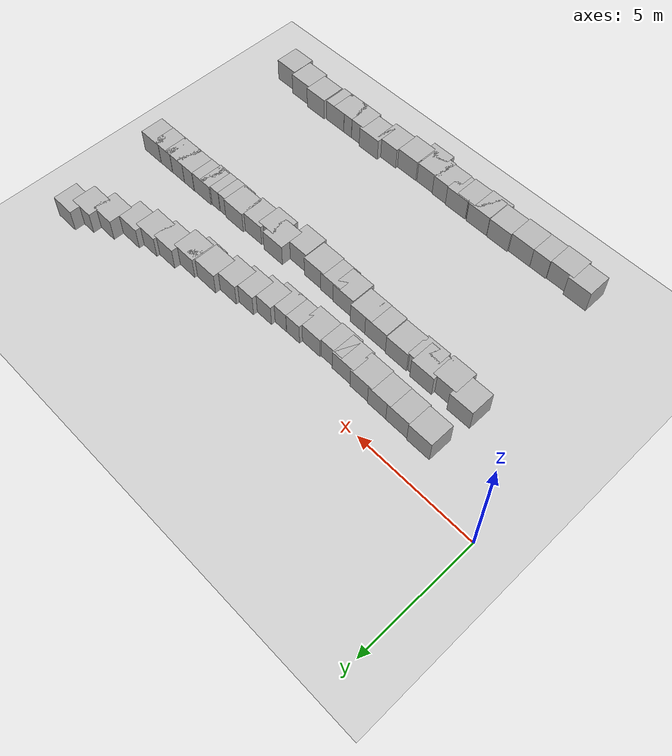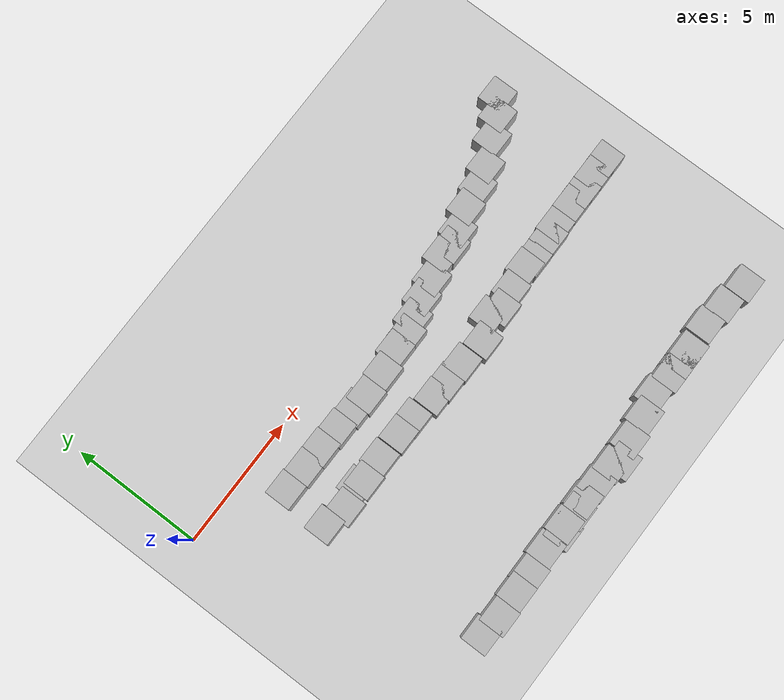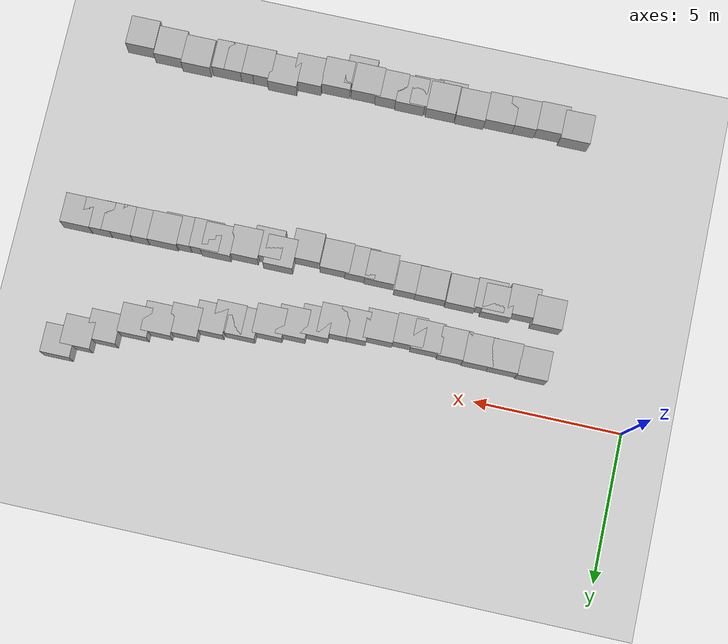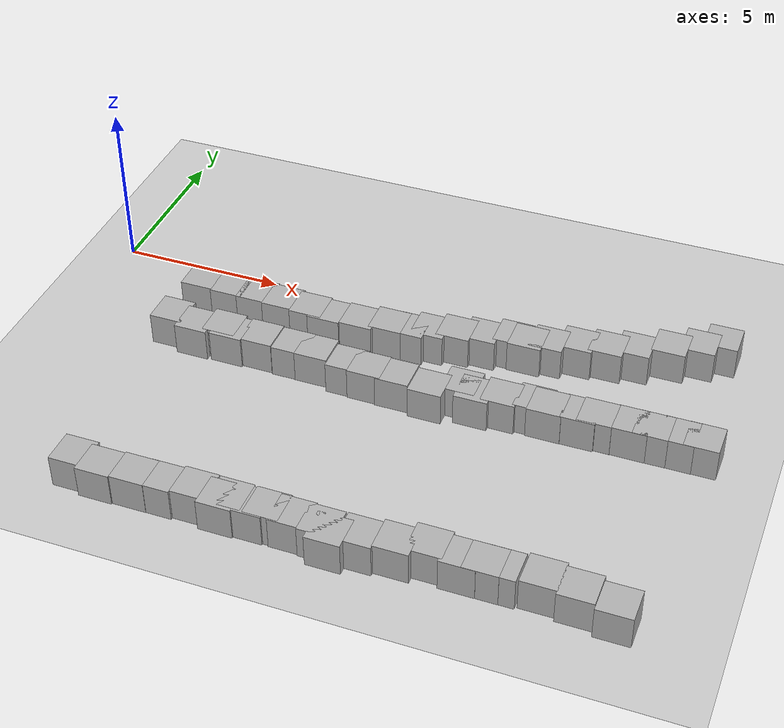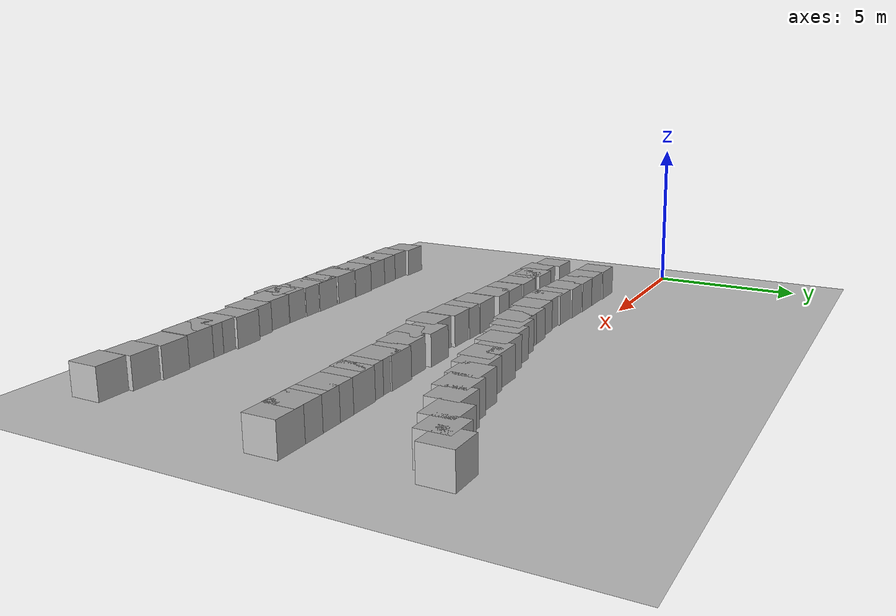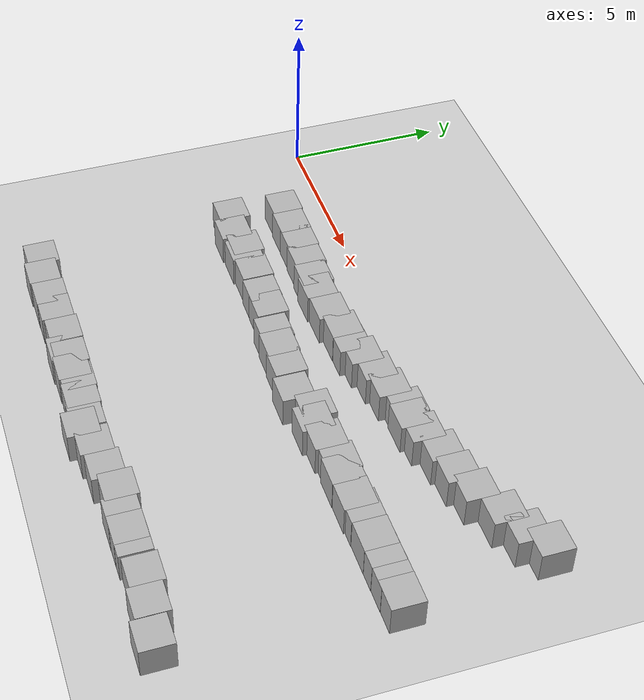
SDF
<sdf version="1.10">
 <world name="empty">
  <model name="ground_plane">
   <static>true</static>
   <link name="link">
    <collision name="collision">
     <geometry><plane><normal>0 0 1</normal><size>100 100</size></plane></geometry>
    </collision>
    <visual name="visual">
     <geometry><plane><normal>0 0 1</normal><size>100 100</size></plane></geometry>
     <material>
      <ambient>0.800000012 0.800000012 0.800000012 1</ambient>
      <diffuse>0.800000012 0.800000012 0.800000012 1</diffuse>
      <specular>0.800000012 0.800000012 0.800000012 1</specular>
     </material>
    </visual>
    <inertial>
     <mass>1</mass>
     <inertia><ixx>1</ixx><ixy>0</ixy><ixz>0</ixz><iyy>1</iyy><iyz>0</iyz><izz>1</izz></inertia>
    </inertial>
   </link>
  </model>
  <model name="box_3">
   <pose>3.32570040269158 -1.5574516324013623 0.5 0 0 0</pose>
   <link name="box_link">
    <inertial>
     <inertia><ixx>0.16666</ixx><ixy>0</ixy><ixz>0</ixz><iyy>0.16666</iyy><iyz>0</iyz><izz>0.16666</izz></inertia>
     <mass>1</mass>
    </inertial>
    <collision name="box_collision"><geometry><box><size>1 1 1</size></box></geometry></collision>
    <visual name="box_visual">
     <geometry><box><size>1 1 1</size></box></geometry>
     <material>
      <ambient>0.300000012 0.300000012 0.300000012 1</ambient>
      <diffuse>0.699999988 0.699999988 0.699999988 1</diffuse>
      <specular>1 1 1 1</specular>
     </material>
    </visual>
   </link>
   <static>false</static>
  </model>
  <model name="box_4">
   <pose>4.3095598220825195 -1.5955400466918945 0.5 0 0 0</pose>
   <link name="box_link">
    <inertial>
     <inertia><ixx>0.16666</ixx><ixy>0</ixy><ixz>0</ixz><iyy>0.16666</iyy><iyz>0</iyz><izz>0.16666</izz></inertia>
     <mass>1</mass>
    </inertial>
    <collision name="box_collision"><geometry><box><size>1 1 1</size></box></geometry></collision>
    <visual name="box_visual">
     <geometry><box><size>1 1 1</size></box></geometry>
     <material>
      <ambient>0.300000012 0.300000012 0.300000012 1</ambient>
      <diffuse>0.699999988 0.699999988 0.699999988 1</diffuse>
      <specular>1 1 1 1</specular>
     </material>
    </visual>
   </link>
   <static>false</static>
  </model>
  <model name="box_5">
   <pose>5.1638998985290527 -1.6039999723434448 0.5 0 0 0</pose>
   <link name="box_link">
    <inertial>
     <inertia><ixx>0.16666</ixx><ixy>0</ixy><ixz>0</ixz><iyy>0.16666</iyy><iyz>0</iyz><izz>0.16666</izz></inertia>
     <mass>1</mass>
    </inertial>
    <collision name="box_collision"><geometry><box><size>1 1 1</size></box></geometry></collision>
    <visual name="box_visual">
     <geometry><box><size>1 1 1</size></box></geometry>
     <material>
      <ambient>0.300000012 0.300000012 0.300000012 1</ambient>
      <diffuse>0.699999988 0.699999988 0.699999988 1</diffuse>
      <specular>1 1 1 1</specular>
     </material>
    </visual>
   </link>
   <static>false</static>
  </model>
  <model name="box_6">
   <pose>6.0194320302158717 -1.6390551681615317 0.5 0 0 0</pose>
   <link name="box_link">
    <inertial>
     <inertia><ixx>0.16666</ixx><ixy>0</ixy><ixz>0</ixz><iyy>0.16666</iyy><iyz>0</iyz><izz>0.16666</izz></inertia>
     <mass>1</mass>
    </inertial>
    <collision name="box_collision"><geometry><box><size>1 1 1</size></box></geometry></collision>
    <visual name="box_visual">
     <geometry><box><size>1 1 1</size></box></geometry>
     <material>
      <ambient>0.300000012 0.300000012 0.300000012 1</ambient>
      <diffuse>0.699999988 0.699999988 0.699999988 1</diffuse>
      <specular>1 1 1 1</specular>
     </material>
    </visual>
   </link>
   <static>false</static>
  </model>
  <model name="box_7">
   <pose>6.9316211139197259 -1.6916820472834306 0.5 0 0 0</pose>
   <link name="box_link">
    <inertial>
     <inertia><ixx>0.16666</ixx><ixy>0</ixy><ixz>0</ixz><iyy>0.16666</iyy><iyz>0</iyz><izz>0.16666</izz></inertia>
     <mass>1</mass>
    </inertial>
    <collision name="box_collision"><geometry><box><size>1 1 1</size></box></geometry></collision>
    <visual name="box_visual">
     <geometry><box><size>1 1 1</size></box></geometry>
     <material>
      <ambient>0.300000012 0.300000012 0.300000012 1</ambient>
      <diffuse>0.699999988 0.699999988 0.699999988 1</diffuse>
      <specular>1 1 1 1</specular>
     </material>
    </visual>
   </link>
   <static>false</static>
  </model>
  <model name="box_7_278">
   <pose>3.1899312912597839 -3.3241716556162739 0.5 0 0 0</pose>
   <link name="box_link">
    <inertial>
     <inertia><ixx>0.16666</ixx><ixy>0</ixy><ixz>0</ixz><iyy>0.16666</iyy><iyz>0</iyz><izz>0.16666</izz></inertia>
     <mass>1</mass>
    </inertial>
    <collision name="box_collision"><geometry><box><size>1 1 1</size></box></geometry></collision>
    <visual name="box_visual">
     <geometry><box><size>1 1 1</size></box></geometry>
     <material>
      <ambient>0.300000012 0.300000012 0.300000012 1</ambient>
      <diffuse>0.699999988 0.699999988 0.699999988 1</diffuse>
      <specular>1 1 1 1</specular>
     </material>
    </visual>
   </link>
   <static>false</static>
  </model>
  <model name="box_7_279">
   <pose>4.0768509504319077 -3.5118481541005417 0.5 0 0 0</pose>
   <link name="box_link">
    <inertial>
     <inertia><ixx>0.16666</ixx><ixy>0</ixy><ixz>0</ixz><iyy>0.16666</iyy><iyz>0</iyz><izz>0.16666</izz></inertia>
     <mass>1</mass>
    </inertial>
    <collision name="box_collision"><geometry><box><size>1 1 1</size></box></geometry></collision>
    <visual name="box_visual">
     <geometry><box><size>1 1 1</size></box></geometry>
     <material>
      <ambient>0.300000012 0.300000012 0.300000012 1</ambient>
      <diffuse>0.699999988 0.699999988 0.699999988 1</diffuse>
      <specular>1 1 1 1</specular>
     </material>
    </visual>
   </link>
   <static>false</static>
  </model>
  <model name="box_7_280">
   <pose>5.1803492763475756 -3.4763345221045157 0.5 0 0 0</pose>
   <link name="box_link">
    <inertial>
     <inertia><ixx>0.16666</ixx><ixy>0</ixy><ixz>0</ixz><iyy>0.16666</iyy><iyz>0</iyz><izz>0.16666</izz></inertia>
     <mass>1</mass>
    </inertial>
    <collision name="box_collision"><geometry><box><size>1 1 1</size></box></geometry></collision>
    <visual name="box_visual">
     <geometry><box><size>1 1 1</size></box></geometry>
     <material>
      <ambient>0.300000012 0.300000012 0.300000012 1</ambient>
      <diffuse>0.699999988 0.699999988 0.699999988 1</diffuse>
      <specular>1 1 1 1</specular>
     </material>
    </visual>
   </link>
   <static>false</static>
  </model>
  <model name="box_7_281">
   <pose>4.9050678674339245 -3.3552024864661565 0.5 0 0 0</pose>
   <link name="box_link">
    <inertial>
     <inertia><ixx>0.16666</ixx><ixy>0</ixy><ixz>0</ixz><iyy>0.16666</iyy><iyz>0</iyz><izz>0.16666</izz></inertia>
     <mass>1</mass>
    </inertial>
    <collision name="box_collision"><geometry><box><size>1 1 1</size></box></geometry></collision>
    <visual name="box_visual">
     <geometry><box><size>1 1 1</size></box></geometry>
     <material>
      <ambient>0.300000012 0.300000012 0.300000012 1</ambient>
      <diffuse>0.699999988 0.699999988 0.699999988 1</diffuse>
      <specular>1 1 1 1</specular>
     </material>
    </visual>
   </link>
   <static>false</static>
  </model>
  <model name="box_7_282">
   <pose>6.1108789525417517 -3.4175179810041598 0.5 0 0 0</pose>
   <link name="box_link">
    <inertial>
     <inertia><ixx>0.16666</ixx><ixy>0</ixy><ixz>0</ixz><iyy>0.16666</iyy><iyz>0</iyz><izz>0.16666</izz></inertia>
     <mass>1</mass>
    </inertial>
    <collision name="box_collision"><geometry><box><size>1 1 1</size></box></geometry></collision>
    <visual name="box_visual">
     <geometry><box><size>1 1 1</size></box></geometry>
     <material>
      <ambient>0.300000012 0.300000012 0.300000012 1</ambient>
      <diffuse>0.699999988 0.699999988 0.699999988 1</diffuse>
      <specular>1 1 1 1</specular>
     </material>
    </visual>
   </link>
   <static>false</static>
  </model>
  <model name="box_7_283">
   <pose>7.1395519382109249 -3.4550864809146029 0.5 0 0 0</pose>
   <link name="box_link">
    <inertial>
     <inertia><ixx>0.16666</ixx><ixy>0</ixy><ixz>0</ixz><iyy>0.16666</iyy><iyz>0</iyz><izz>0.16666</izz></inertia>
     <mass>1</mass>
    </inertial>
    <collision name="box_collision"><geometry><box><size>1 1 1</size></box></geometry></collision>
    <visual name="box_visual">
     <geometry><box><size>1 1 1</size></box></geometry>
     <material>
      <ambient>0.300000012 0.300000012 0.300000012 1</ambient>
      <diffuse>0.699999988 0.699999988 0.699999988 1</diffuse>
      <specular>1 1 1 1</specular>
     </material>
    </visual>
   </link>
   <static>false</static>
  </model>
  <model name="box_7_298">
   <pose>3.4727532616491992 -9.7323604995992525 0.5 0 0 0</pose>
   <link name="box_link">
    <inertial>
     <inertia><ixx>0.16666</ixx><ixy>0</ixy><ixz>0</ixz><iyy>0.16666</iyy><iyz>0</iyz><izz>0.16666</izz></inertia>
     <mass>1</mass>
    </inertial>
    <collision name="box_collision"><geometry><box><size>1 1 1</size></box></geometry></collision>
    <visual name="box_visual">
     <geometry><box><size>1 1 1</size></box></geometry>
     <material>
      <ambient>0.300000012 0.300000012 0.300000012 1</ambient>
      <diffuse>0.699999988 0.699999988 0.699999988 1</diffuse>
      <specular>1 1 1 1</specular>
     </material>
    </visual>
   </link>
   <static>false</static>
  </model>
  <model name="box_7_299">
   <pose>4.3226446998561681 -9.8498939027238226 0.5 0 0 0</pose>
   <link name="box_link">
    <inertial>
     <inertia><ixx>0.16666</ixx><ixy>0</ixy><ixz>0</ixz><iyy>0.16666</iyy><iyz>0</iyz><izz>0.16666</izz></inertia>
     <mass>1</mass>
    </inertial>
    <collision name="box_collision"><geometry><box><size>1 1 1</size></box></geometry></collision>
    <visual name="box_visual">
     <geometry><box><size>1 1 1</size></box></geometry>
     <material>
      <ambient>0.300000012 0.300000012 0.300000012 1</ambient>
      <diffuse>0.699999988 0.699999988 0.699999988 1</diffuse>
      <specular>1 1 1 1</specular>
     </material>
    </visual>
   </link>
   <static>false</static>
  </model>
  <model name="box_7_300">
   <pose>5.3202061937592866 -9.8141702264049737 0.5 0 0 0</pose>
   <link name="box_link">
    <inertial>
     <inertia><ixx>0.16666</ixx><ixy>0</ixy><ixz>0</ixz><iyy>0.16666</iyy><iyz>0</iyz><izz>0.16666</izz></inertia>
     <mass>1</mass>
    </inertial>
    <collision name="box_collision"><geometry><box><size>1 1 1</size></box></geometry></collision>
    <visual name="box_visual">
     <geometry><box><size>1 1 1</size></box></geometry>
     <material>
      <ambient>0.300000012 0.300000012 0.300000012 1</ambient>
      <diffuse>0.699999988 0.699999988 0.699999988 1</diffuse>
      <specular>1 1 1 1</specular>
     </material>
    </visual>
   </link>
   <static>false</static>
  </model>
  <model name="box_7_301">
   <pose>6.0690468821239865 -9.8060210623141213 0.5 0 0 0</pose>
   <link name="box_link">
    <inertial>
     <inertia><ixx>0.16666</ixx><ixy>0</ixy><ixz>0</ixz><iyy>0.16666</iyy><iyz>0</iyz><izz>0.16666</izz></inertia>
     <mass>1</mass>
    </inertial>
    <collision name="box_collision"><geometry><box><size>1 1 1</size></box></geometry></collision>
    <visual name="box_visual">
     <geometry><box><size>1 1 1</size></box></geometry>
     <material>
      <ambient>0.300000012 0.300000012 0.300000012 1</ambient>
      <diffuse>0.699999988 0.699999988 0.699999988 1</diffuse>
      <specular>1 1 1 1</specular>
     </material>
    </visual>
   </link>
   <static>false</static>
  </model>
  <model name="box_7_302">
   <pose>7.065768157355186 -9.7434128184080286 0.5 0 0 0</pose>
   <link name="box_link">
    <inertial>
     <inertia><ixx>0.16666</ixx><ixy>0</ixy><ixz>0</ixz><iyy>0.16666</iyy><iyz>0</iyz><izz>0.16666</izz></inertia>
     <mass>1</mass>
    </inertial>
    <collision name="box_collision"><geometry><box><size>1 1 1</size></box></geometry></collision>
    <visual name="box_visual">
     <geometry><box><size>1 1 1</size></box></geometry>
     <material>
      <ambient>0.300000012 0.300000012 0.300000012 1</ambient>
      <diffuse>0.699999988 0.699999988 0.699999988 1</diffuse>
      <specular>1 1 1 1</specular>
     </material>
    </visual>
   </link>
   <static>false</static>
  </model>
  <model name="box_7_303">
   <pose>8.0896223887527867 -9.7594691903472643 0.5 0 0 0</pose>
   <link name="box_link">
    <inertial>
     <inertia><ixx>0.16666</ixx><ixy>0</ixy><ixz>0</ixz><iyy>0.16666</iyy><iyz>0</iyz><izz>0.16666</izz></inertia>
     <mass>1</mass>
    </inertial>
    <collision name="box_collision"><geometry><box><size>1 1 1</size></box></geometry></collision>
    <visual name="box_visual">
     <geometry><box><size>1 1 1</size></box></geometry>
     <material>
      <ambient>0.300000012 0.300000012 0.300000012 1</ambient>
      <diffuse>0.699999988 0.699999988 0.699999988 1</diffuse>
      <specular>1 1 1 1</specular>
     </material>
    </visual>
   </link>
   <static>false</static>
  </model>
  <model name="box_7_304">
   <pose>7.8679039419366275 -9.8657560861748195 0.5 0 0 0</pose>
   <link name="box_link">
    <inertial>
     <inertia><ixx>0.16666</ixx><ixy>0</ixy><ixz>0</ixz><iyy>0.16666</iyy><iyz>0</iyz><izz>0.16666</izz></inertia>
     <mass>1</mass>
    </inertial>
    <collision name="box_collision"><geometry><box><size>1 1 1</size></box></geometry></collision>
    <visual name="box_visual">
     <geometry><box><size>1 1 1</size></box></geometry>
     <material>
      <ambient>0.300000012 0.300000012 0.300000012 1</ambient>
      <diffuse>0.699999988 0.699999988 0.699999988 1</diffuse>
      <specular>1 1 1 1</specular>
     </material>
    </visual>
   </link>
   <static>false</static>
  </model>
  <model name="box_7_410">
   <pose>7.5362403580198318 -1.7554858373763569 0.5 0 0 0</pose>
   <link name="box_link">
    <inertial>
     <inertia><ixx>0.16666</ixx><ixy>0</ixy><ixz>0</ixz><iyy>0.16666</iyy><iyz>0</iyz><izz>0.16666</izz></inertia>
     <mass>1</mass>
    </inertial>
    <collision name="box_collision"><geometry><box><size>1 1 1</size></box></geometry></collision>
    <visual name="box_visual">
     <geometry><box><size>1 1 1</size></box></geometry>
     <material>
      <ambient>0.300000012 0.300000012 0.300000012 1</ambient>
      <diffuse>0.699999988 0.699999988 0.699999988 1</diffuse>
      <specular>1 1 1 1</specular>
     </material>
    </visual>
   </link>
   <static>false</static>
  </model>
  <model name="box_7_411">
   <pose>8.5361497162122113 -1.7022385163928941 0.5 0 0 0</pose>
   <link name="box_link">
    <inertial>
     <inertia><ixx>0.16666</ixx><ixy>0</ixy><ixz>0</ixz><iyy>0.16666</iyy><iyz>0</iyz><izz>0.16666</izz></inertia>
     <mass>1</mass>
    </inertial>
    <collision name="box_collision"><geometry><box><size>1 1 1</size></box></geometry></collision>
    <visual name="box_visual">
     <geometry><box><size>1 1 1</size></box></geometry>
     <material>
      <ambient>0.300000012 0.300000012 0.300000012 1</ambient>
      <diffuse>0.699999988 0.699999988 0.699999988 1</diffuse>
      <specular>1 1 1 1</specular>
     </material>
    </visual>
   </link>
   <static>false</static>
  </model>
  <model name="box_7_412">
   <pose>9.4072423060750303 -1.5680388395053182 0.5 0 0 0</pose>
   <link name="box_link">
    <inertial>
     <inertia><ixx>0.16666</ixx><ixy>0</ixy><ixz>0</ixz><iyy>0.16666</iyy><iyz>0</iyz><izz>0.16666</izz></inertia>
     <mass>1</mass>
    </inertial>
    <collision name="box_collision"><geometry><box><size>1 1 1</size></box></geometry></collision>
    <visual name="box_visual">
     <geometry><box><size>1 1 1</size></box></geometry>
     <material>
      <ambient>0.300000012 0.300000012 0.300000012 1</ambient>
      <diffuse>0.699999988 0.699999988 0.699999988 1</diffuse>
      <specular>1 1 1 1</specular>
     </material>
    </visual>
   </link>
   <static>false</static>
  </model>
  <model name="box_7_413">
   <pose>10.063737456475266 -1.5591683449155855 0.5 0 0 0</pose>
   <link name="box_link">
    <inertial>
     <inertia><ixx>0.16666</ixx><ixy>0</ixy><ixz>0</ixz><iyy>0.16666</iyy><iyz>0</iyz><izz>0.16666</izz></inertia>
     <mass>1</mass>
    </inertial>
    <collision name="box_collision"><geometry><box><size>1 1 1</size></box></geometry></collision>
    <visual name="box_visual">
     <geometry><box><size>1 1 1</size></box></geometry>
     <material>
      <ambient>0.300000012 0.300000012 0.300000012 1</ambient>
      <diffuse>0.699999988 0.699999988 0.699999988 1</diffuse>
      <specular>1 1 1 1</specular>
     </material>
    </visual>
   </link>
   <static>false</static>
  </model>
  <model name="box_7_414">
   <pose>10.644209412640482 -1.3866473455104114 0.5 0 0 0</pose>
   <link name="box_link">
    <inertial>
     <inertia><ixx>0.16666</ixx><ixy>0</ixy><ixz>0</ixz><iyy>0.16666</iyy><iyz>0</iyz><izz>0.16666</izz></inertia>
     <mass>1</mass>
    </inertial>
    <collision name="box_collision"><geometry><box><size>1 1 1</size></box></geometry></collision>
    <visual name="box_visual">
     <geometry><box><size>1 1 1</size></box></geometry>
     <material>
      <ambient>0.300000012 0.300000012 0.300000012 1</ambient>
      <diffuse>0.699999988 0.699999988 0.699999988 1</diffuse>
      <specular>1 1 1 1</specular>
     </material>
    </visual>
   </link>
   <static>false</static>
  </model>
  <model name="box_7_415">
   <pose>11.383219602016997 -1.209288312398602 0.5 0 0 0</pose>
   <link name="box_link">
    <inertial>
     <inertia><ixx>0.16666</ixx><ixy>0</ixy><ixz>0</ixz><iyy>0.16666</iyy><iyz>0</iyz><izz>0.16666</izz></inertia>
     <mass>1</mass>
    </inertial>
    <collision name="box_collision"><geometry><box><size>1 1 1</size></box></geometry></collision>
    <visual name="box_visual">
     <geometry><box><size>1 1 1</size></box></geometry>
     <material>
      <ambient>0.300000012 0.300000012 0.300000012 1</ambient>
      <diffuse>0.699999988 0.699999988 0.699999988 1</diffuse>
      <specular>1 1 1 1</specular>
     </material>
    </visual>
   </link>
   <static>false</static>
  </model>
  <model name="box_7_416">
   <pose>12.137430358858348 -1.0734682973609555 0.5 0 0 0</pose>
   <link name="box_link">
    <inertial>
     <inertia><ixx>0.16666</ixx><ixy>0</ixy><ixz>0</ixz><iyy>0.16666</iyy><iyz>0</iyz><izz>0.16666</izz></inertia>
     <mass>1</mass>
    </inertial>
    <collision name="box_collision"><geometry><box><size>1 1 1</size></box></geometry></collision>
    <visual name="box_visual">
     <geometry><box><size>1 1 1</size></box></geometry>
     <material>
      <ambient>0.300000012 0.300000012 0.300000012 1</ambient>
      <diffuse>0.699999988 0.699999988 0.699999988 1</diffuse>
      <specular>1 1 1 1</specular>
     </material>
    </visual>
   </link>
   <static>false</static>
  </model>
  <model name="box_7_417">
   <pose>13.008924791603034 -0.85592767281883653 0.5 0 0 0</pose>
   <link name="box_link">
    <inertial>
     <inertia><ixx>0.16666</ixx><ixy>0</ixy><ixz>0</ixz><iyy>0.16666</iyy><iyz>0</iyz><izz>0.16666</izz></inertia>
     <mass>1</mass>
    </inertial>
    <collision name="box_collision"><geometry><box><size>1 1 1</size></box></geometry></collision>
    <visual name="box_visual">
     <geometry><box><size>1 1 1</size></box></geometry>
     <material>
      <ambient>0.300000012 0.300000012 0.300000012 1</ambient>
      <diffuse>0.699999988 0.699999988 0.699999988 1</diffuse>
      <specular>1 1 1 1</specular>
     </material>
    </visual>
   </link>
   <static>false</static>
  </model>
  <model name="box_7_418">
   <pose>14.051360314931211 -0.75955269749736942 0.5 0 0 0</pose>
   <link name="box_link">
    <inertial>
     <inertia><ixx>0.16666</ixx><ixy>0</ixy><ixz>0</ixz><iyy>0.16666</iyy><iyz>0</iyz><izz>0.16666</izz></inertia>
     <mass>1</mass>
    </inertial>
    <collision name="box_collision"><geometry><box><size>1 1 1</size></box></geometry></collision>
    <visual name="box_visual">
     <geometry><box><size>1 1 1</size></box></geometry>
     <material>
      <ambient>0.300000012 0.300000012 0.300000012 1</ambient>
      <diffuse>0.699999988 0.699999988 0.699999988 1</diffuse>
      <specular>1 1 1 1</specular>
     </material>
    </visual>
   </link>
   <static>false</static>
  </model>
  <model name="box_7_419">
   <pose>14.868230933327633 -0.50016379432496194 0.5 0 0 0</pose>
   <link name="box_link">
    <inertial>
     <inertia><ixx>0.16666</ixx><ixy>0</ixy><ixz>0</ixz><iyy>0.16666</iyy><iyz>0</iyz><izz>0.16666</izz></inertia>
     <mass>1</mass>
    </inertial>
    <collision name="box_collision"><geometry><box><size>1 1 1</size></box></geometry></collision>
    <visual name="box_visual">
     <geometry><box><size>1 1 1</size></box></geometry>
     <material>
      <ambient>0.300000012 0.300000012 0.300000012 1</ambient>
      <diffuse>0.699999988 0.699999988 0.699999988 1</diffuse>
      <specular>1 1 1 1</specular>
     </material>
    </visual>
   </link>
   <static>false</static>
  </model>
  <model name="box_7_420">
   <pose>13.463799891244129 -0.8943250786799446 0.5 0 0 0</pose>
   <link name="box_link">
    <inertial>
     <inertia><ixx>0.16666</ixx><ixy>0</ixy><ixz>0</ixz><iyy>0.16666</iyy><iyz>0</iyz><izz>0.16666</izz></inertia>
     <mass>1</mass>
    </inertial>
    <collision name="box_collision"><geometry><box><size>1 1 1</size></box></geometry></collision>
    <visual name="box_visual">
     <geometry><box><size>1 1 1</size></box></geometry>
     <material>
      <ambient>0.300000012 0.300000012 0.300000012 1</ambient>
      <diffuse>0.699999988 0.699999988 0.699999988 1</diffuse>
      <specular>1 1 1 1</specular>
     </material>
    </visual>
   </link>
   <static>false</static>
  </model>
  <model name="box_7_421">
   <pose>15.730058244757457 -0.36734756333491525 0.5 0 0 0</pose>
   <link name="box_link">
    <inertial>
     <inertia><ixx>0.16666</ixx><ixy>0</ixy><ixz>0</ixz><iyy>0.16666</iyy><iyz>0</iyz><izz>0.16666</izz></inertia>
     <mass>1</mass>
    </inertial>
    <collision name="box_collision"><geometry><box><size>1 1 1</size></box></geometry></collision>
    <visual name="box_visual">
     <geometry><box><size>1 1 1</size></box></geometry>
     <material>
      <ambient>0.300000012 0.300000012 0.300000012 1</ambient>
      <diffuse>0.699999988 0.699999988 0.699999988 1</diffuse>
      <specular>1 1 1 1</specular>
     </material>
    </visual>
   </link>
   <static>false</static>
  </model>
  <model name="box_7_422">
   <pose>16.480578799088509 -0.14668582209718295 0.5 0 0 0</pose>
   <link name="box_link">
    <inertial>
     <inertia><ixx>0.16666</ixx><ixy>0</ixy><ixz>0</ixz><iyy>0.16666</iyy><iyz>0</iyz><izz>0.16666</izz></inertia>
     <mass>1</mass>
    </inertial>
    <collision name="box_collision"><geometry><box><size>1 1 1</size></box></geometry></collision>
    <visual name="box_visual">
     <geometry><box><size>1 1 1</size></box></geometry>
     <material>
      <ambient>0.300000012 0.300000012 0.300000012 1</ambient>
      <diffuse>0.699999988 0.699999988 0.699999988 1</diffuse>
      <specular>1 1 1 1</specular>
     </material>
    </visual>
   </link>
   <static>false</static>
  </model>
  <model name="box_7_423">
   <pose>17.43658991202069 0.27713616854550338 0.5 0 0 0</pose>
   <link name="box_link">
    <inertial>
     <inertia><ixx>0.16666</ixx><ixy>0</ixy><ixz>0</ixz><iyy>0.16666</iyy><iyz>0</iyz><izz>0.16666</izz></inertia>
     <mass>1</mass>
    </inertial>
    <collision name="box_collision"><geometry><box><size>1 1 1</size></box></geometry></collision>
    <visual name="box_visual">
     <geometry><box><size>1 1 1</size></box></geometry>
     <material>
      <ambient>0.300000012 0.300000012 0.300000012 1</ambient>
      <diffuse>0.699999988 0.699999988 0.699999988 1</diffuse>
      <specular>1 1 1 1</specular>
     </material>
    </visual>
   </link>
   <static>false</static>
  </model>
  <model name="box_7_424">
   <pose>18.218544303551294 0.62408091947902911 0.5 0 0 0</pose>
   <link name="box_link">
    <inertial>
     <inertia><ixx>0.16666</ixx><ixy>0</ixy><ixz>0</ixz><iyy>0.16666</iyy><iyz>0</iyz><izz>0.16666</izz></inertia>
     <mass>1</mass>
    </inertial>
    <collision name="box_collision"><geometry><box><size>1 1 1</size></box></geometry></collision>
    <visual name="box_visual">
     <geometry><box><size>1 1 1</size></box></geometry>
     <material>
      <ambient>0.300000012 0.300000012 0.300000012 1</ambient>
      <diffuse>0.699999988 0.699999988 0.699999988 1</diffuse>
      <specular>1 1 1 1</specular>
     </material>
    </visual>
   </link>
   <static>false</static>
  </model>
  <model name="box_7_425">
   <pose>18.79171201793929 1.0437997714270342 0.5 0 0 0</pose>
   <link name="box_link">
    <inertial>
     <inertia><ixx>0.16666</ixx><ixy>0</ixy><ixz>0</ixz><iyy>0.16666</iyy><iyz>0</iyz><izz>0.16666</izz></inertia>
     <mass>1</mass>
    </inertial>
    <collision name="box_collision"><geometry><box><size>1 1 1</size></box></geometry></collision>
    <visual name="box_visual">
     <geometry><box><size>1 1 1</size></box></geometry>
     <material>
      <ambient>0.300000012 0.300000012 0.300000012 1</ambient>
      <diffuse>0.699999988 0.699999988 0.699999988 1</diffuse>
      <specular>1 1 1 1</specular>
     </material>
    </visual>
   </link>
   <static>false</static>
  </model>
  <model name="box_7_446">
   <pose>7.8653962443220635 -3.4658379921253353 0.5 0 0 0</pose>
   <link name="box_link">
    <inertial>
     <inertia><ixx>0.16666</ixx><ixy>0</ixy><ixz>0</ixz><iyy>0.16666</iyy><iyz>0</iyz><izz>0.16666</izz></inertia>
     <mass>1</mass>
    </inertial>
    <collision name="box_collision"><geometry><box><size>1 1 1</size></box></geometry></collision>
    <visual name="box_visual">
     <geometry><box><size>1 1 1</size></box></geometry>
     <material>
      <ambient>0.300000012 0.300000012 0.300000012 1</ambient>
      <diffuse>0.699999988 0.699999988 0.699999988 1</diffuse>
      <specular>1 1 1 1</specular>
     </material>
    </visual>
   </link>
   <static>false</static>
  </model>
  <model name="box_7_447">
   <pose>8.8974447012595768 -3.6231610013197777 0.5 0 0 0</pose>
   <link name="box_link">
    <inertial>
     <inertia><ixx>0.16666</ixx><ixy>0</ixy><ixz>0</ixz><iyy>0.16666</iyy><iyz>0</iyz><izz>0.16666</izz></inertia>
     <mass>1</mass>
    </inertial>
    <collision name="box_collision"><geometry><box><size>1 1 1</size></box></geometry></collision>
    <visual name="box_visual">
     <geometry><box><size>1 1 1</size></box></geometry>
     <material>
      <ambient>0.300000012 0.300000012 0.300000012 1</ambient>
      <diffuse>0.699999988 0.699999988 0.699999988 1</diffuse>
      <specular>1 1 1 1</specular>
     </material>
    </visual>
   </link>
   <static>false</static>
  </model>
  <model name="box_7_448">
   <pose>8.6956161498076305 -9.8200873345604034 0.5 0 0 0</pose>
   <link name="box_link">
    <inertial>
     <inertia><ixx>0.16666</ixx><ixy>0</ixy><ixz>0</ixz><iyy>0.16666</iyy><iyz>0</iyz><izz>0.16666</izz></inertia>
     <mass>1</mass>
    </inertial>
    <collision name="box_collision"><geometry><box><size>1 1 1</size></box></geometry></collision>
    <visual name="box_visual">
     <geometry><box><size>1 1 1</size></box></geometry>
     <material>
      <ambient>0.300000012 0.300000012 0.300000012 1</ambient>
      <diffuse>0.699999988 0.699999988 0.699999988 1</diffuse>
      <specular>1 1 1 1</specular>
     </material>
    </visual>
   </link>
   <static>false</static>
  </model>
  <model name="box_7_449">
   <pose>9.8659534970808842 -9.8080834234070693 0.5 0 0 0</pose>
   <link name="box_link">
    <inertial>
     <inertia><ixx>0.16666</ixx><ixy>0</ixy><ixz>0</ixz><iyy>0.16666</iyy><iyz>0</iyz><izz>0.16666</izz></inertia>
     <mass>1</mass>
    </inertial>
    <collision name="box_collision"><geometry><box><size>1 1 1</size></box></geometry></collision>
    <visual name="box_visual">
     <geometry><box><size>1 1 1</size></box></geometry>
     <material>
      <ambient>0.300000012 0.300000012 0.300000012 1</ambient>
      <diffuse>0.699999988 0.699999988 0.699999988 1</diffuse>
      <specular>1 1 1 1</specular>
     </material>
    </visual>
   </link>
   <static>false</static>
  </model>
  <model name="box_7_450">
   <pose>9.1577468633682884 -9.7735742216235035 0.5 0 0 0</pose>
   <link name="box_link">
    <inertial>
     <inertia><ixx>0.16666</ixx><ixy>0</ixy><ixz>0</ixz><iyy>0.16666</iyy><iyz>0</iyz><izz>0.16666</izz></inertia>
     <mass>1</mass>
    </inertial>
    <collision name="box_collision"><geometry><box><size>1 1 1</size></box></geometry></collision>
    <visual name="box_visual">
     <geometry><box><size>1 1 1</size></box></geometry>
     <material>
      <ambient>0.300000012 0.300000012 0.300000012 1</ambient>
      <diffuse>0.699999988 0.699999988 0.699999988 1</diffuse>
      <specular>1 1 1 1</specular>
     </material>
    </visual>
   </link>
   <static>false</static>
  </model>
  <model name="box_7_451">
   <pose>9.5682999921684164 -3.655814553969198 0.5 0 0 0</pose>
   <link name="box_link">
    <inertial>
     <inertia><ixx>0.16666</ixx><ixy>0</ixy><ixz>0</ixz><iyy>0.16666</iyy><iyz>0</iyz><izz>0.16666</izz></inertia>
     <mass>1</mass>
    </inertial>
    <collision name="box_collision"><geometry><box><size>1 1 1</size></box></geometry></collision>
    <visual name="box_visual">
     <geometry><box><size>1 1 1</size></box></geometry>
     <material>
      <ambient>0.300000012 0.300000012 0.300000012 1</ambient>
      <diffuse>0.699999988 0.699999988 0.699999988 1</diffuse>
      <specular>1 1 1 1</specular>
     </material>
    </visual>
   </link>
   <static>false</static>
  </model>
  <model name="box_7_452">
   <pose>10.700332639091268 -9.8450807657044095 0.5 0 0 0</pose>
   <link name="box_link">
    <inertial>
     <inertia><ixx>0.16666</ixx><ixy>0</ixy><ixz>0</ixz><iyy>0.16666</iyy><iyz>0</iyz><izz>0.16666</izz></inertia>
     <mass>1</mass>
    </inertial>
    <collision name="box_collision"><geometry><box><size>1 1 1</size></box></geometry></collision>
    <visual name="box_visual">
     <geometry><box><size>1 1 1</size></box></geometry>
     <material>
      <ambient>0.300000012 0.300000012 0.300000012 1</ambient>
      <diffuse>0.699999988 0.699999988 0.699999988 1</diffuse>
      <specular>1 1 1 1</specular>
     </material>
    </visual>
   </link>
   <static>false</static>
  </model>
  <model name="box_7_453">
   <pose>10.429141502034163 -3.6884667806683646 0.5 0 0 0</pose>
   <link name="box_link">
    <inertial>
     <inertia><ixx>0.16666</ixx><ixy>0</ixy><ixz>0</ixz><iyy>0.16666</iyy><iyz>0</iyz><izz>0.16666</izz></inertia>
     <mass>1</mass>
    </inertial>
    <collision name="box_collision"><geometry><box><size>1 1 1</size></box></geometry></collision>
    <visual name="box_visual">
     <geometry><box><size>1 1 1</size></box></geometry>
     <material>
      <ambient>0.300000012 0.300000012 0.300000012 1</ambient>
      <diffuse>0.699999988 0.699999988 0.699999988 1</diffuse>
      <specular>1 1 1 1</specular>
     </material>
    </visual>
   </link>
   <static>false</static>
  </model>
  <model name="box_7_454">
   <pose>11.745040129590739 -9.8345746040683437 0.5 0 0 0</pose>
   <link name="box_link">
    <inertial>
     <inertia><ixx>0.16666</ixx><ixy>0</ixy><ixz>0</ixz><iyy>0.16666</iyy><iyz>0</iyz><izz>0.16666</izz></inertia>
     <mass>1</mass>
    </inertial>
    <collision name="box_collision"><geometry><box><size>1 1 1</size></box></geometry></collision>
    <visual name="box_visual">
     <geometry><box><size>1 1 1</size></box></geometry>
     <material>
      <ambient>0.300000012 0.300000012 0.300000012 1</ambient>
      <diffuse>0.699999988 0.699999988 0.699999988 1</diffuse>
      <specular>1 1 1 1</specular>
     </material>
    </visual>
   </link>
   <static>false</static>
  </model>
  <model name="box_7_455">
   <pose>11.456643735051049 -3.8043625980541709 0.5 0 0 0</pose>
   <link name="box_link">
    <inertial>
     <inertia><ixx>0.16666</ixx><ixy>0</ixy><ixz>0</ixz><iyy>0.16666</iyy><iyz>0</iyz><izz>0.16666</izz></inertia>
     <mass>1</mass>
    </inertial>
    <collision name="box_collision"><geometry><box><size>1 1 1</size></box></geometry></collision>
    <visual name="box_visual">
     <geometry><box><size>1 1 1</size></box></geometry>
     <material>
      <ambient>0.300000012 0.300000012 0.300000012 1</ambient>
      <diffuse>0.699999988 0.699999988 0.699999988 1</diffuse>
      <specular>1 1 1 1</specular>
     </material>
    </visual>
   </link>
   <static>false</static>
  </model>
  <model name="box_7_456">
   <pose>10.991656268304684 -10.055010432402993 0.5 0 0 0</pose>
   <link name="box_link">
    <inertial>
     <inertia><ixx>0.16666</ixx><ixy>0</ixy><ixz>0</ixz><iyy>0.16666</iyy><iyz>0</iyz><izz>0.16666</izz></inertia>
     <mass>1</mass>
    </inertial>
    <collision name="box_collision"><geometry><box><size>1 1 1</size></box></geometry></collision>
    <visual name="box_visual">
     <geometry><box><size>1 1 1</size></box></geometry>
     <material>
      <ambient>0.300000012 0.300000012 0.300000012 1</ambient>
      <diffuse>0.699999988 0.699999988 0.699999988 1</diffuse>
      <specular>1 1 1 1</specular>
     </material>
    </visual>
   </link>
   <static>false</static>
  </model>
  <model name="box_7_457">
   <pose>12.304410729002205 -3.4168788287779854 0.5 0 0 0</pose>
   <link name="box_link">
    <inertial>
     <inertia><ixx>0.16666</ixx><ixy>0</ixy><ixz>0</ixz><iyy>0.16666</iyy><iyz>0</iyz><izz>0.16666</izz></inertia>
     <mass>1</mass>
    </inertial>
    <collision name="box_collision"><geometry><box><size>1 1 1</size></box></geometry></collision>
    <visual name="box_visual">
     <geometry><box><size>1 1 1</size></box></geometry>
     <material>
      <ambient>0.300000012 0.300000012 0.300000012 1</ambient>
      <diffuse>0.699999988 0.699999988 0.699999988 1</diffuse>
      <specular>1 1 1 1</specular>
     </material>
    </visual>
   </link>
   <static>false</static>
  </model>
  <model name="box_7_458">
   <pose>12.722766355498973 -9.7345635322836692 0.5 0 0 0</pose>
   <link name="box_link">
    <inertial>
     <inertia><ixx>0.16666</ixx><ixy>0</ixy><ixz>0</ixz><iyy>0.16666</iyy><iyz>0</iyz><izz>0.16666</izz></inertia>
     <mass>1</mass>
    </inertial>
    <collision name="box_collision"><geometry><box><size>1 1 1</size></box></geometry></collision>
    <visual name="box_visual">
     <geometry><box><size>1 1 1</size></box></geometry>
     <material>
      <ambient>0.300000012 0.300000012 0.300000012 1</ambient>
      <diffuse>0.699999988 0.699999988 0.699999988 1</diffuse>
      <specular>1 1 1 1</specular>
     </material>
    </visual>
   </link>
   <static>false</static>
  </model>
  <model name="box_7_475">
   <pose>12.756366782577905 -3.6231605828493159 0.5 0 0 0</pose>
   <link name="box_link">
    <inertial>
     <inertia><ixx>0.16666</ixx><ixy>0</ixy><ixz>0</ixz><iyy>0.16666</iyy><iyz>0</iyz><izz>0.16666</izz></inertia>
     <mass>1</mass>
    </inertial>
    <collision name="box_collision"><geometry><box><size>1 1 1</size></box></geometry></collision>
    <visual name="box_visual">
     <geometry><box><size>1 1 1</size></box></geometry>
     <material>
      <ambient>0.300000012 0.300000012 0.300000012 1</ambient>
      <diffuse>0.699999988 0.699999988 0.699999988 1</diffuse>
      <specular>1 1 1 1</specular>
     </material>
    </visual>
   </link>
   <static>false</static>
  </model>
  <model name="box_7_476">
   <pose>13.500827594904836 -3.4880953252430995 0.5 0 0 0</pose>
   <link name="box_link">
    <inertial>
     <inertia><ixx>0.16666</ixx><ixy>0</ixy><ixz>0</ixz><iyy>0.16666</iyy><iyz>0</iyz><izz>0.16666</izz></inertia>
     <mass>1</mass>
    </inertial>
    <collision name="box_collision"><geometry><box><size>1 1 1</size></box></geometry></collision>
    <visual name="box_visual">
     <geometry><box><size>1 1 1</size></box></geometry>
     <material>
      <ambient>0.300000012 0.300000012 0.300000012 1</ambient>
      <diffuse>0.699999988 0.699999988 0.699999988 1</diffuse>
      <specular>1 1 1 1</specular>
     </material>
    </visual>
   </link>
   <static>false</static>
  </model>
  <model name="box_7_477">
   <pose>14.41709782708528 -3.3931410957962536 0.5 0 0 0</pose>
   <link name="box_link">
    <inertial>
     <inertia><ixx>0.16666</ixx><ixy>0</ixy><ixz>0</ixz><iyy>0.16666</iyy><iyz>0</iyz><izz>0.16666</izz></inertia>
     <mass>1</mass>
    </inertial>
    <collision name="box_collision"><geometry><box><size>1 1 1</size></box></geometry></collision>
    <visual name="box_visual">
     <geometry><box><size>1 1 1</size></box></geometry>
     <material>
      <ambient>0.300000012 0.300000012 0.300000012 1</ambient>
      <diffuse>0.699999988 0.699999988 0.699999988 1</diffuse>
      <specular>1 1 1 1</specular>
     </material>
    </visual>
   </link>
   <static>false</static>
  </model>
  <model name="box_7_478">
   <pose>14.824479683621927 -3.4331901821883273 0.5 0 0 0</pose>
   <link name="box_link">
    <inertial>
     <inertia><ixx>0.16666</ixx><ixy>0</ixy><ixz>0</ixz><iyy>0.16666</iyy><iyz>0</iyz><izz>0.16666</izz></inertia>
     <mass>1</mass>
    </inertial>
    <collision name="box_collision"><geometry><box><size>1 1 1</size></box></geometry></collision>
    <visual name="box_visual">
     <geometry><box><size>1 1 1</size></box></geometry>
     <material>
      <ambient>0.300000012 0.300000012 0.300000012 1</ambient>
      <diffuse>0.699999988 0.699999988 0.699999988 1</diffuse>
      <specular>1 1 1 1</specular>
     </material>
    </visual>
   </link>
   <static>false</static>
  </model>
  <model name="box_7_479">
   <pose>15.780122651349723 -3.4213202064182289 0.5 0 0 0</pose>
   <link name="box_link">
    <inertial>
     <inertia><ixx>0.16666</ixx><ixy>0</ixy><ixz>0</ixz><iyy>0.16666</iyy><iyz>0</iyz><izz>0.16666</izz></inertia>
     <mass>1</mass>
    </inertial>
    <collision name="box_collision"><geometry><box><size>1 1 1</size></box></geometry></collision>
    <visual name="box_visual">
     <geometry><box><size>1 1 1</size></box></geometry>
     <material>
      <ambient>0.300000012 0.300000012 0.300000012 1</ambient>
      <diffuse>0.699999988 0.699999988 0.699999988 1</diffuse>
      <specular>1 1 1 1</specular>
     </material>
    </visual>
   </link>
   <static>false</static>
  </model>
  <model name="box_7_480">
   <pose>16.238993725486168 -3.3738540524401994 0.5 0 0 0</pose>
   <link name="box_link">
    <inertial>
     <inertia><ixx>0.16666</ixx><ixy>0</ixy><ixz>0</ixz><iyy>0.16666</iyy><iyz>0</iyz><izz>0.16666</izz></inertia>
     <mass>1</mass>
    </inertial>
    <collision name="box_collision"><geometry><box><size>1 1 1</size></box></geometry></collision>
    <visual name="box_visual">
     <geometry><box><size>1 1 1</size></box></geometry>
     <material>
      <ambient>0.300000012 0.300000012 0.300000012 1</ambient>
      <diffuse>0.699999988 0.699999988 0.699999988 1</diffuse>
      <specular>1 1 1 1</specular>
     </material>
    </visual>
   </link>
   <static>false</static>
  </model>
  <model name="box_7_481">
   <pose>17.230060995118798 -3.3619853160480613 0.5 0 0 0</pose>
   <link name="box_link">
    <inertial>
     <inertia><ixx>0.16666</ixx><ixy>0</ixy><ixz>0</ixz><iyy>0.16666</iyy><iyz>0</iyz><izz>0.16666</izz></inertia>
     <mass>1</mass>
    </inertial>
    <collision name="box_collision"><geometry><box><size>1 1 1</size></box></geometry></collision>
    <visual name="box_visual">
     <geometry><box><size>1 1 1</size></box></geometry>
     <material>
      <ambient>0.300000012 0.300000012 0.300000012 1</ambient>
      <diffuse>0.699999988 0.699999988 0.699999988 1</diffuse>
      <specular>1 1 1 1</specular>
     </material>
    </visual>
   </link>
   <static>false</static>
  </model>
  <model name="box_7_482">
   <pose>17.805711018453266 -3.3575335221078282 0.5 0 0 0</pose>
   <link name="box_link">
    <inertial>
     <inertia><ixx>0.16666</ixx><ixy>0</ixy><ixz>0</ixz><iyy>0.16666</iyy><iyz>0</iyz><izz>0.16666</izz></inertia>
     <mass>1</mass>
    </inertial>
    <collision name="box_collision"><geometry><box><size>1 1 1</size></box></geometry></collision>
    <visual name="box_visual">
     <geometry><box><size>1 1 1</size></box></geometry>
     <material>
      <ambient>0.300000012 0.300000012 0.300000012 1</ambient>
      <diffuse>0.699999988 0.699999988 0.699999988 1</diffuse>
      <specular>1 1 1 1</specular>
     </material>
    </visual>
   </link>
   <static>false</static>
  </model>
  <model name="box_7_483">
   <pose>18.517850609599556 -3.3501154875674253 0.5 0 0 0</pose>
   <link name="box_link">
    <inertial>
     <inertia><ixx>0.16666</ixx><ixy>0</ixy><ixz>0</ixz><iyy>0.16666</iyy><iyz>0</iyz><izz>0.16666</izz></inertia>
     <mass>1</mass>
    </inertial>
    <collision name="box_collision"><geometry><box><size>1 1 1</size></box></geometry></collision>
    <visual name="box_visual">
     <geometry><box><size>1 1 1</size></box></geometry>
     <material>
      <ambient>0.300000012 0.300000012 0.300000012 1</ambient>
      <diffuse>0.699999988 0.699999988 0.699999988 1</diffuse>
      <specular>1 1 1 1</specular>
     </material>
    </visual>
   </link>
   <static>false</static>
  </model>
  <model name="box_7_484">
   <pose>19.212192191168374 -3.3426975042405864 0.5 0 0 0</pose>
   <link name="box_link">
    <inertial>
     <inertia><ixx>0.16666</ixx><ixy>0</ixy><ixz>0</ixz><iyy>0.16666</iyy><iyz>0</iyz><izz>0.16666</izz></inertia>
     <mass>1</mass>
    </inertial>
    <collision name="box_collision"><geometry><box><size>1 1 1</size></box></geometry></collision>
    <visual name="box_visual">
     <geometry><box><size>1 1 1</size></box></geometry>
     <material>
      <ambient>0.300000012 0.300000012 0.300000012 1</ambient>
      <diffuse>0.699999988 0.699999988 0.699999988 1</diffuse>
      <specular>1 1 1 1</specular>
     </material>
    </visual>
   </link>
   <static>false</static>
  </model>
  <model name="box_7_527">
   <pose>13.536839457783756 -9.5461401161537616 0.5 0 0 0</pose>
   <link name="box_link">
    <inertial>
     <inertia><ixx>0.16666</ixx><ixy>0</ixy><ixz>0</ixz><iyy>0.16666</iyy><iyz>0</iyz><izz>0.16666</izz></inertia>
     <mass>1</mass>
    </inertial>
    <collision name="box_collision"><geometry><box><size>1 1 1</size></box></geometry></collision>
    <visual name="box_visual">
     <geometry><box><size>1 1 1</size></box></geometry>
     <material>
      <ambient>0.300000012 0.300000012 0.300000012 1</ambient>
      <diffuse>0.699999988 0.699999988 0.699999988 1</diffuse>
      <specular>1 1 1 1</specular>
     </material>
    </visual>
   </link>
   <static>false</static>
  </model>
  <model name="box_7_528">
   <pose>14.453753902842895 -9.6425326399856139 0.5 0 0 0</pose>
   <link name="box_link">
    <inertial>
     <inertia><ixx>0.16666</ixx><ixy>0</ixy><ixz>0</ixz><iyy>0.16666</iyy><iyz>0</iyz><izz>0.16666</izz></inertia>
     <mass>1</mass>
    </inertial>
    <collision name="box_collision"><geometry><box><size>1 1 1</size></box></geometry></collision>
    <visual name="box_visual">
     <geometry><box><size>1 1 1</size></box></geometry>
     <material>
      <ambient>0.300000012 0.300000012 0.300000012 1</ambient>
      <diffuse>0.699999988 0.699999988 0.699999988 1</diffuse>
      <specular>1 1 1 1</specular>
     </material>
    </visual>
   </link>
   <static>false</static>
  </model>
  <model name="box_7_529">
   <pose>15.494900316609421 -9.632747144475065 0.5 0 0 0</pose>
   <link name="box_link">
    <inertial>
     <inertia><ixx>0.16666</ixx><ixy>0</ixy><ixz>0</ixz><iyy>0.16666</iyy><iyz>0</iyz><izz>0.16666</izz></inertia>
     <mass>1</mass>
    </inertial>
    <collision name="box_collision"><geometry><box><size>1 1 1</size></box></geometry></collision>
    <visual name="box_visual">
     <geometry><box><size>1 1 1</size></box></geometry>
     <material>
      <ambient>0.300000012 0.300000012 0.300000012 1</ambient>
      <diffuse>0.699999988 0.699999988 0.699999988 1</diffuse>
      <specular>1 1 1 1</specular>
     </material>
    </visual>
   </link>
   <static>false</static>
  </model>
  <model name="box_7_530">
   <pose>15.064347195014607 -9.6366609845028748 0.5 0 0 0</pose>
   <link name="box_link">
    <inertial>
     <inertia><ixx>0.16666</ixx><ixy>0</ixy><ixz>0</ixz><iyy>0.16666</iyy><iyz>0</iyz><izz>0.16666</izz></inertia>
     <mass>1</mass>
    </inertial>
    <collision name="box_collision"><geometry><box><size>1 1 1</size></box></geometry></collision>
    <visual name="box_visual">
     <geometry><box><size>1 1 1</size></box></geometry>
     <material>
      <ambient>0.300000012 0.300000012 0.300000012 1</ambient>
      <diffuse>0.699999988 0.699999988 0.699999988 1</diffuse>
      <specular>1 1 1 1</specular>
     </material>
    </visual>
   </link>
   <static>false</static>
  </model>
  <model name="box_7_531">
   <pose>16.543871145277631 -9.5662075953456736 0.5 0 0 0</pose>
   <link name="box_link">
    <inertial>
     <inertia><ixx>0.16666</ixx><ixy>0</ixy><ixz>0</ixz><iyy>0.16666</iyy><iyz>0</iyz><izz>0.16666</izz></inertia>
     <mass>1</mass>
    </inertial>
    <collision name="box_collision"><geometry><box><size>1 1 1</size></box></geometry></collision>
    <visual name="box_visual">
     <geometry><box><size>1 1 1</size></box></geometry>
     <material>
      <ambient>0.300000012 0.300000012 0.300000012 1</ambient>
      <diffuse>0.699999988 0.699999988 0.699999988 1</diffuse>
      <specular>1 1 1 1</specular>
     </material>
    </visual>
   </link>
   <static>false</static>
  </model>
  <model name="box_7_532">
   <pose>17.522911314814625 -9.6675242433199866 0.5 0 0 0</pose>
   <link name="box_link">
    <inertial>
     <inertia><ixx>0.16666</ixx><ixy>0</ixy><ixz>0</ixz><iyy>0.16666</iyy><iyz>0</iyz><izz>0.16666</izz></inertia>
     <mass>1</mass>
    </inertial>
    <collision name="box_collision"><geometry><box><size>1 1 1</size></box></geometry></collision>
    <visual name="box_visual">
     <geometry><box><size>1 1 1</size></box></geometry>
     <material>
      <ambient>0.300000012 0.300000012 0.300000012 1</ambient>
      <diffuse>0.699999988 0.699999988 0.699999988 1</diffuse>
      <specular>1 1 1 1</specular>
     </material>
    </visual>
   </link>
   <static>false</static>
  </model>
  <model name="box_7_533">
   <pose>18.536298259043406 -9.817131608589829 0.5 0 0 0</pose>
   <link name="box_link">
    <inertial>
     <inertia><ixx>0.16666</ixx><ixy>0</ixy><ixz>0</ixz><iyy>0.16666</iyy><iyz>0</iyz><izz>0.16666</izz></inertia>
     <mass>1</mass>
    </inertial>
    <collision name="box_collision"><geometry><box><size>1 1 1</size></box></geometry></collision>
    <visual name="box_visual">
     <geometry><box><size>1 1 1</size></box></geometry>
     <material>
      <ambient>0.300000012 0.300000012 0.300000012 1</ambient>
      <diffuse>0.699999988 0.699999988 0.699999988 1</diffuse>
      <specular>1 1 1 1</specular>
     </material>
    </visual>
   </link>
   <static>false</static>
  </model>
 </world>
</sdf>
